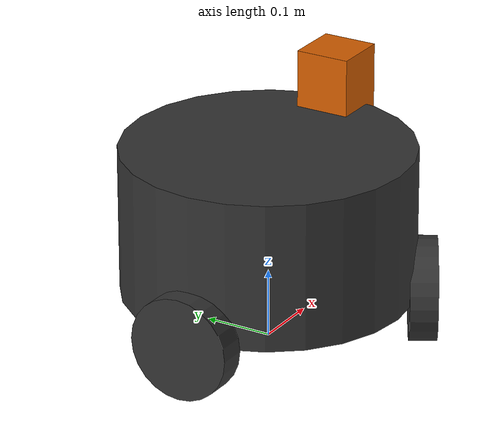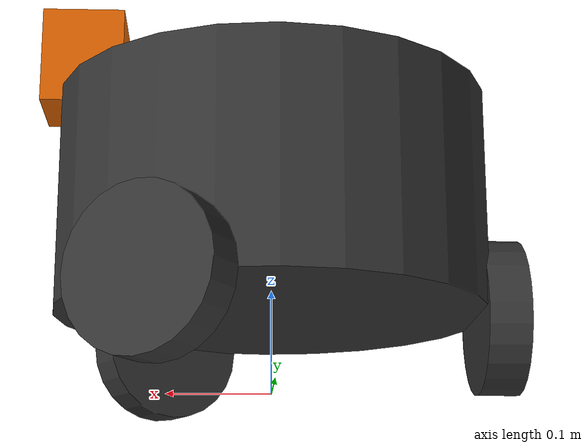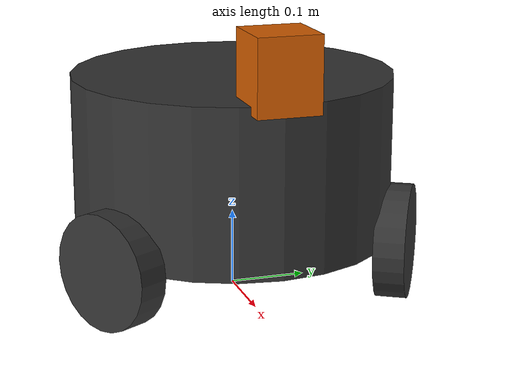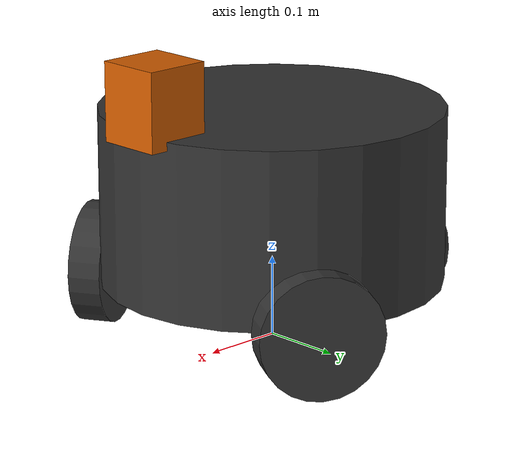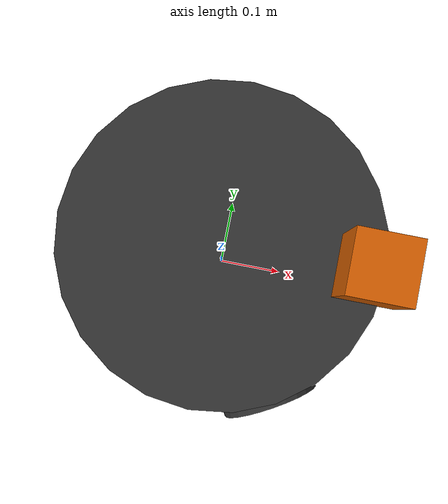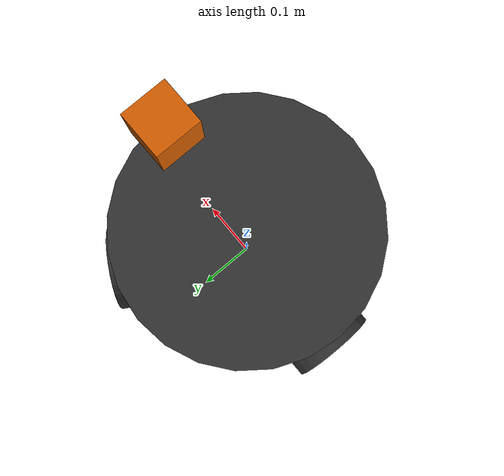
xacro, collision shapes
<?xml version="1.0"?>
<robot name="justina" xmlns:xacro="http://www.ros.org/wiki/xacro">
	<xacro:include filename="$(find knowledge)/hardware/justina.gazebo" />
	<!-- Import Rviz colors -->
	<xacro:include filename="$(find knowledge)/hardware/materials.xacro" />
	<xacro:include filename="$(find knowledge)/hardware/macros.xacro" />

	<xacro:property name="base_radius" value="0.21"/>
	<xacro:property name="base_height" value="0.2156"/>
	<xacro:property name="base_mass" value="2.0"/>
	<xacro:property name="wheel_radius" value="0.075"/>
	<xacro:property name="wheel_height" value="0.04"/>
	<xacro:property name="wheel_mass" value="0.52098"/>

	<link name="base_link"/>

	<joint name="hex_base_connect" type="fixed">
		<origin xyz="0 0 0" rpy="0 0 0" />
		<parent link="base_link"/>
		<child link="hex_base_link" />
	</joint>

	<link name="hex_base_link">
		<visual>
			<origin xyz="0.0 0.0 0.075" rpy="0.0 0 1.5708"/>
			<!-- origin xyz="0 0 0.1828" rpy="0 0 0"/ -->
			<geometry>
				<mesh filename="package://knowledge/hardware/stl/base/baseHex.dae"/>
				<!-- cylinder length="${base_height}" radius="${base_radius}"/ -->
			</geometry>
			<material name="grey"/>
		</visual>
		<collision>
			<origin xyz="0 0 0.1828" rpy="0 0 0"/>
			<geometry><cylinder length="${base_height}" radius="${base_radius}"/></geometry>
		</collision>
		<inertial>
			<origin xyz="0 0 0.1828" rpy="0 0 0"/>
			<mass value="${base_mass}"/>
			<cylinder_inertia m="${base_mass}" r="${base_radius}" h="${base_height}"/>
		</inertial>
	</link>
	<joint name="wheel_front_left_connect" type="continuous">
		<origin xyz="0.1091 0.189 0.075" rpy="1.57078 0 -3.67"/>
		<parent link="hex_base_link"/>
		<child link="wheel_front_left"/>
		<axis xyz="0 0 1"/>
	</joint>

	<link name="wheel_front_left">
		<visual>
			<origin xyz="0 0 0" rpy="0 3.1416 0"/>
			<geometry>
				<mesh filename="package://knowledge/hardware/stl/base/rueda.dae"/>
				<!-- cylinder length="${wheel_height}" radius="${wheel_radius}"/ -->
			</geometry>
			<material name="grey"/>
		</visual>
		<collision>
			<origin xyz="0 0 0" rpy="0 0 0"/>
			<geometry><cylinder length="${wheel_height}" radius="${wheel_radius}"/></geometry>
		</collision>
		<inertial>
			<origin xyz="0 0 0"/>
			<mass value="${wheel_mass}"/>
			<cylinder_inertia m="${wheel_mass}" r="${wheel_radius}" h="${wheel_height}"/>
		</inertial>
	</link>

	<joint name="wheel_back_connect" type="continuous">
		<origin xyz="-0.2182 0 0.075" rpy="1.57078 0 -1.5708"/>
		<parent link="hex_base_link"/>
		<child link="wheel_back"/>
		<axis xyz="0 0 1"/>
	</joint>

	<link name="wheel_back">
		<visual>
			<origin xyz="0 0 0" rpy="0 3.1416 0"/>
			<geometry>
				<mesh filename="package://knowledge/hardware/stl/base/rueda.dae"/>
				<!-- cylinder length="${wheel_height}" radius="${wheel_radius}"/ -->
			</geometry>
			<material name="grey"/>
		</visual>
		<collision>
			<origin xyz="0 0 0" rpy="0 0 0"/>
			<geometry><cylinder length="${wheel_height}" radius="${wheel_radius}"/></geometry>
		</collision>
		<inertial>
			<origin xyz="0 0 0" rpy="0 0 0"/>
			<mass value="${wheel_mass}"/>
			<cylinder_inertia m="${wheel_mass}" r="${wheel_radius}" h="${wheel_height}"/>
		</inertial>
	</link>

	<joint name="wheel_front_right_connect" type="continuous">
		<origin xyz="0.1091 -0.189 0.075" rpy="1.57078 0 3.67"/>
		<parent link="hex_base_link"/>
		<child link="wheel_front_right"/>
		<axis xyz="0 0 1"/>
	</joint>

	<link name="wheel_front_right">
		<visual>
			<origin xyz="0 0 0" rpy="0 0 0"/>
			<geometry>
				<mesh filename="package://knowledge/hardware/stl/base/rueda.dae"/>
				<!-- cylinder length="${wheel_height}" radius="${wheel_radius}"/ -->
			</geometry>
			<material name="grey"/>
		</visual>
		<collision>
			<origin xyz="0 0 0" rpy="0 0 0"/>
			<geometry><cylinder length="${wheel_height}" radius="${wheel_radius}"/></geometry>
		</collision>
		<inertial>
			<origin xyz="0 0 0" rpy="0 0 0"/>
			<mass value="${wheel_mass}"/>
			<cylinder_inertia m="${wheel_mass}" r="${wheel_radius}" h="${wheel_height}"/>
		</inertial>
	</link>

	<joint name="laser_connect" type="fixed">
		<origin xyz="0.187 0 0.3276" />
		<parent link="hex_base_link"/>
		<child link="laser_link"/>
	</joint>

	<link name="laser_link">
		<collision>
			<origin xyz="0 0 0" rpy="0 0 0"/>
			<geometry>
				<box size="0.08 0.08 0.095"/>
			</geometry>
		</collision>
		<visual>
			<origin xyz="0 0 0" rpy="0 0 0"/>
			<geometry>
				<mesh filename="package://knowledge/hardware/stl/hokuyo.dae"/>
			</geometry>
		</visual>
		<inertial>
			<mass value="0.01"/>
			<origin xyz="0 0 0" rpy="0 0 0"/>
			<box_inertia m="0.01" x="0.08" y="0.08" z="0.095"/>
		</inertial>
	</link>
</robot>

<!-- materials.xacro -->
<robot xmlns:xacro="http://www.ros.org/wiki/xacro">

	<material name="black">
		<color rgba="0.0 0.0 0.0 1.0"/>
	</material>

	<material name="blue">
		<color rgba="0.0 0.0 0.8 1.0"/>
	</material>

	<material name="green">
		<color rgba="0.0 0.8 0.0 1.0"/>
	</material>

	<material name="grey">
		<color rgba="0.2 0.2 0.2 1.0"/>
	</material>

	<material name="orange">
		<color rgba="${255/255} ${108/255} ${10/255} 1.0"/>
	</material>

	<material name="brown">
		<color rgba="${222/255} ${207/255} ${195/255} 1.0"/>
	</material>

	<material name="red">
		<color rgba="0.8 0.0 0.0 1.0"/>
	</material>

	<material name="white">
		<color rgba="1.0 1.0 1.0 1.0"/>
	</material>

</robot>

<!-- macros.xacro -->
<robot xmlns:xacro="http://www.ros.org/wiki/xacro">
	<xacro:macro name="cylinder_inertia" params="m r h">
		<inertia  ixx="${m*(3*r*r+h*h)/12}" ixy = "0" ixz = "0"
			iyy="${m*(3*r*r+h*h)/12}" iyz = "0"
			izz="${m*r*r/2}"
			/>
	</xacro:macro>

	<xacro:macro name="box_inertia" params="m x y z">
		<inertia  ixx="${m*(y*y+z*z)/12}" ixy = "0" ixz = "0"
			iyy="${m*(x*x+z*z)/12}" iyz = "0"
			izz="${m*(x*x+z*z)/12}"
			/>
	</xacro:macro>

	<xacro:macro name="sphere_inertia" params="m r">
		<inertia  ixx="${2*m*r*r/5}" ixy = "0" ixz = "0"
			iyy="${2*m*r*r/5}" iyz = "0"
			izz="${2*m*r*r/5}"
			/>
	</xacro:macro>
</robot>
